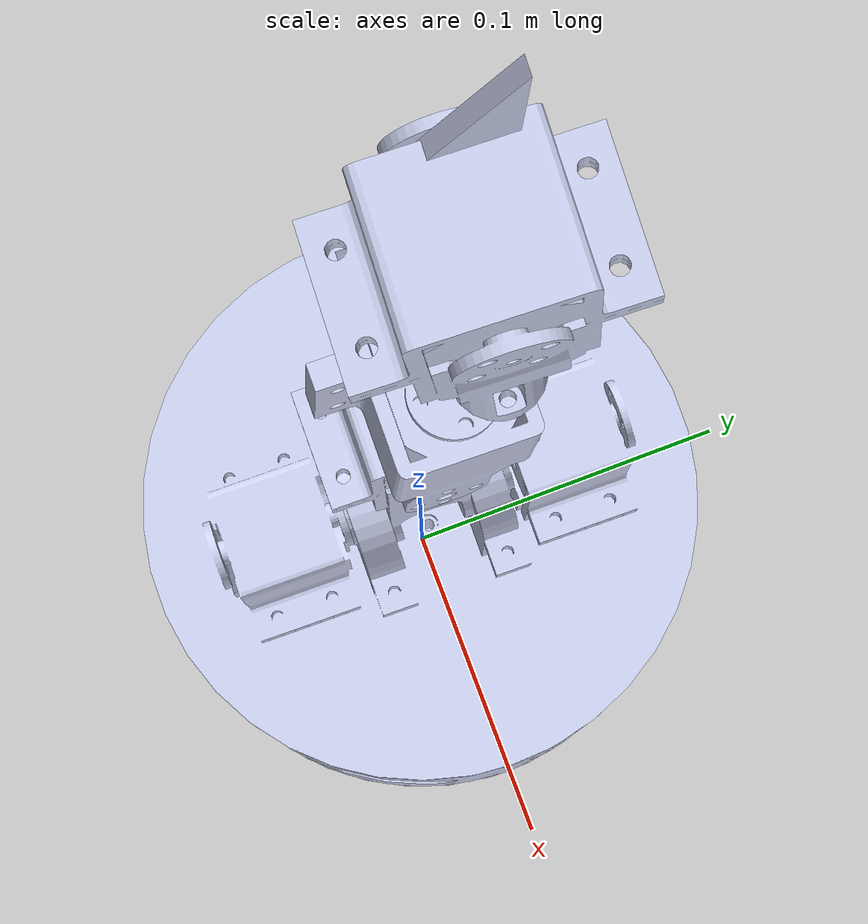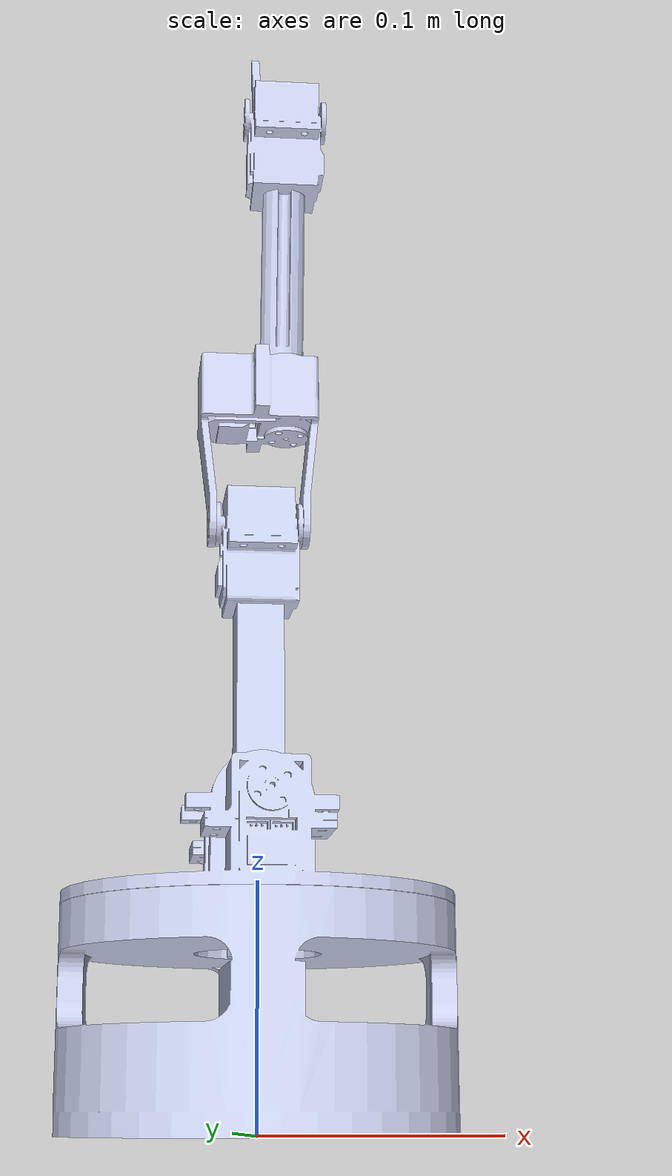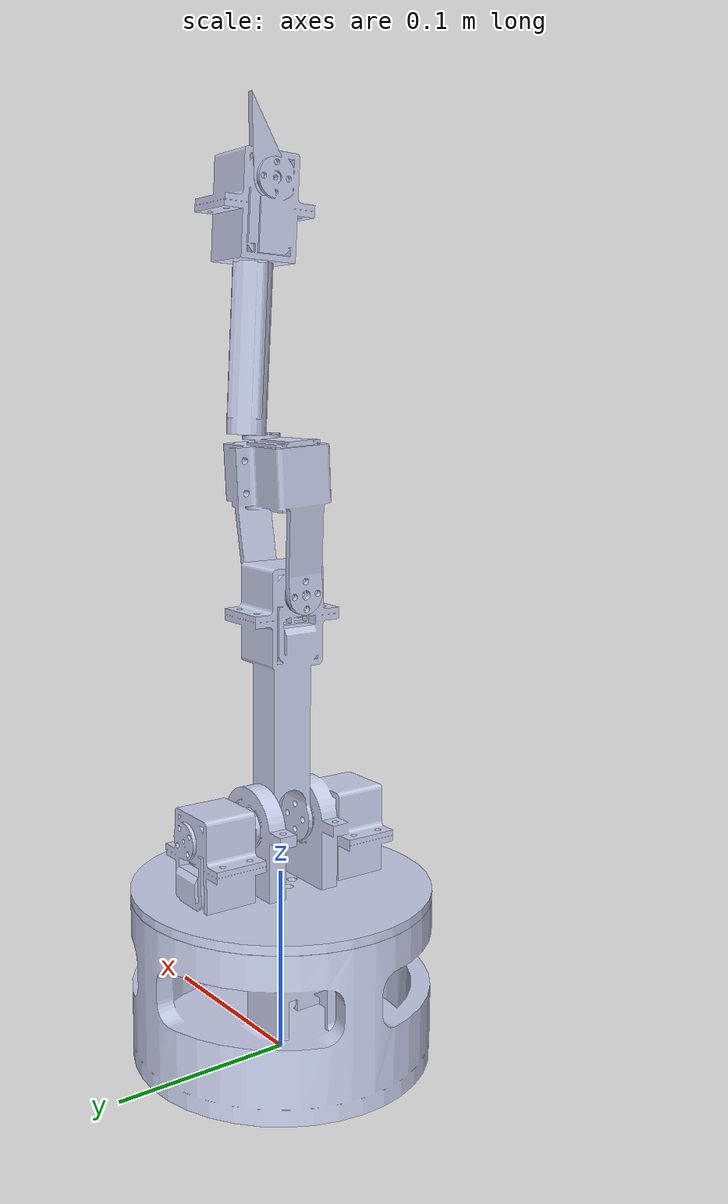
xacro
<?xml version="1.0"?>
<robot xmlns:xacro="http://www.ros.org/wiki/xacro" name="robot_arm">
    <xacro:arg name="initial_positions_file" default="initial_positions.yaml" />

    <!-- Import robot_arm urdf file -->
    <xacro:include filename="$(find robot_arm)/urdf/robot_arm.urdf" />

    <!-- Import control_xacro -->
    <xacro:include filename="robot_arm.ros2_control.xacro" />

    <xacro:robot_arm_ros2_control name="FakeSystem" initial_positions_file="$(arg initial_positions_file)"/>

</robot>

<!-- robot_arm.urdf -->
<robot
  name="robot_arm">
  <link
    name="base_link">
    <inertial>
      <origin
        xyz="-3.4691E-09 -0.0013733 0.007543"
        rpy="0 0 0" />
      <mass
        value="0.19807" />
      <inertia
        ixx="0.00032121"
        ixy="-2.33E-11"
        ixz="3.277E-12"
        iyy="0.00031349"
        iyz="7.6169E-06"
        izz="0.0005892" />
    </inertial>
    <visual>
      <origin
        xyz="0 0 0"
        rpy="0 0 0" />
      <geometry>
        <mesh
          filename="package://robot_arm/meshes/base_link.STL" />
      </geometry>
      <material
        name="">
        <color
          rgba="0.79216 0.81961 0.93333 1" />
      </material>
    </visual>
    <collision>
      <origin
        xyz="0 0 0"
        rpy="0 0 0" />
      <geometry>
        <mesh
          filename="package://robot_arm/meshes/base_link.STL" />
      </geometry>
    </collision>
  </link>
  <link
    name="Link_1">
    <inertial>
      <origin
        xyz="-1.5478E-17 -4.4748E-17 0.011342"
        rpy="0 0 0" />
      <mass
        value="0.24066" />
      <inertia
        ixx="0.00021961"
        ixy="-3.0281E-07"
        ixz="-7.6215E-20"
        iyy="0.0002036"
        iyz="-7.857E-19"
        izz="0.00037108" />
    </inertial>
    <visual>
      <origin
        xyz="0 0 0"
        rpy="0 0 0" />
      <geometry>
        <mesh
          filename="package://robot_arm/meshes/Link_1.STL" />
      </geometry>
      <material
        name="">
        <color
          rgba="0.79216 0.81961 0.93333 1" />
      </material>
    </visual>
    <collision>
      <origin
        xyz="0 0 0"
        rpy="0 0 0" />
      <geometry>
        <mesh
          filename="package://robot_arm/meshes/Link_1.STL" />
      </geometry>
    </collision>
  </link>
  <joint
    name="Joint_1"
    type="revolute">
    <origin
      xyz="0 0 0.0941"
      rpy="0 0 0" />
    <parent
      link="base_link" />
    <child
      link="Link_1" />
    <axis
      xyz="0 0 1" />
    <limit
      lower="-3.14"
      upper="3.14"
      effort="0"
      velocity="0" />
  </joint>
  <link
    name="Link_2">
    <inertial>
      <origin
        xyz="0.080358 0.0005424 0.0088242"
        rpy="0 0 0" />
      <mass
        value="0.090401" />
      <inertia
        ixx="1.3539E-05"
        ixy="-3.1808E-07"
        ixz="6.0163E-09"
        iyy="6.7249E-05"
        iyz="-5.9616E-08"
        izz="6.4097E-05" />
    </inertial>
    <visual>
      <origin
        xyz="0 0 0"
        rpy="0 0 0" />
      <geometry>
        <mesh
          filename="package://robot_arm/meshes/Link_2.STL" />
      </geometry>
      <material
        name="">
        <color
          rgba="0.79216 0.81961 0.93333 1" />
      </material>
    </visual>
    <collision>
      <origin
        xyz="0 0 0"
        rpy="0 0 0" />
      <geometry>
        <mesh
          filename="package://robot_arm/meshes/Link_2.STL" />
      </geometry>
    </collision>
  </link>
  <joint
    name="Joint_2"
    type="revolute">
    <origin
      xyz="0.00017175 0.0088483 0.034334"
      rpy="1.5708 -1.5708 0" />
    <parent
      link="Link_1" />
    <child
      link="Link_2" />
    <axis
      xyz="0 0 1" />
    <limit
      lower="-1.57"
      upper="1.57"
      effort="0"
      velocity="0" />
  </joint>
  <link
    name="Link_3">
    <inertial>
      <origin
        xyz="0.0541062471270772 -0.00354604381686915 -0.0220064974845355"
        rpy="0 0 0" />
      <mass
        value="0.05696273993258" />
      <inertia
        ixx="1.25532493264705E-05"
        ixy="4.038810934172E-07"
        ixz="2.95850913058183E-08"
        iyy="1.95793004928046E-05"
        iyz="-4.25743374682629E-08"
        izz="1.74776992259823E-05" />
    </inertial>
    <visual>
      <origin
        xyz="0 0 0"
        rpy="0 0 0" />
      <geometry>
        <mesh
          filename="package://robot_arm/meshes/Link_3.STL" />
      </geometry>
      <material
        name="">
        <color
          rgba="0.792156862745098 0.819607843137255 0.933333333333333 1" />
      </material>
    </visual>
    <collision>
      <origin
        xyz="0 0 0"
        rpy="0 0 0" />
      <geometry>
        <mesh
          filename="package://robot_arm/meshes/Link_3.STL" />
      </geometry>
    </collision>
  </link>
  <joint
    name="Joint_3"
    type="revolute">
    <origin
      xyz="0.12513 -0.020736 0.0091349"
      rpy="1.5708 0 0" />
    <parent
      link="Link_2" />
    <child
      link="Link_3" />
    <axis
      xyz="0 0 1" />
    <limit
      lower="-1.57"
      upper="1.57"
      effort="0"
      velocity="0" />
  </joint>
  <link
    name="Link_4">
    <inertial>
      <origin
        xyz="7.52705426133402E-05 0.000462811756834552 0.00858695671693732"
        rpy="0 0 0" />
      <mass
        value="0.0674532689964479" />
      <inertia
        ixx="3.93720710688711E-05"
        ixy="-4.83208580470525E-08"
        ixz="1.50463738848548E-07"
        iyy="3.82051496112177E-05"
        iyz="-1.63505049750872E-06"
        izz="9.77717247497827E-06" />
    </inertial>
    <visual>
      <origin
        xyz="0 0 0"
        rpy="0 0 0" />
      <geometry>
        <mesh
          filename="package://robot_arm/meshes/Link_4.STL" />
      </geometry>
      <material
        name="">
        <color
          rgba="0.792156862745098 0.819607843137255 0.933333333333333 1" />
      </material>
    </visual>
    <collision>
      <origin
        xyz="0 0 0"
        rpy="0 0 0" />
      <geometry>
        <mesh
          filename="package://robot_arm/meshes/Link_4.STL" />
      </geometry>
    </collision>
  </link>
  <joint
    name="Joint_4"
    type="revolute">
    <origin
      xyz="0.16019 -0.0093985 -0.0098166"
      rpy="0 1.5708 0" />
    <parent
      link="Link_3" />
    <child
      link="Link_4" />
    <axis
      xyz="0 0 1" />
    <limit
      lower="-3.14"
      upper="3.14"
      effort="0"
      velocity="0" />
  </joint>
  <link
    name="End_Effector">
    <inertial>
      <origin
        xyz="0.00878258139730009 -0.00234120487883826 0.00381053635874969"
        rpy="0 0 0" />
      <mass
        value="0.00185906518982787" />
      <inertia
        ixx="5.36992775192672E-08"
        ixy="5.49967375111194E-08"
        ixz="-1.1655036355356E-09"
        iyy="2.27532299935667E-07"
        iyz="2.18796546028271E-09"
        izz="2.77224509924143E-07" />
    </inertial>
    <visual>
      <origin
        xyz="0 0 0"
        rpy="0 0 0" />
      <geometry>
        <mesh
          filename="package://robot_arm/meshes/End_Effector.STL" />
      </geometry>
      <material
        name="">
        <color
          rgba="0.792156862745098 0.819607843137255 0.933333333333333 1" />
      </material>
    </visual>
    <collision>
      <origin
        xyz="0 0 0"
        rpy="0 0 0" />
      <geometry>
        <mesh
          filename="package://robot_arm/meshes/End_Effector.STL" />
      </geometry>
    </collision>
  </link>
  <joint
    name="Joint_5"
    type="revolute">
    <origin
      xyz="0.016421 0.0012653 0.038182"
      rpy="0 -1.5708 0" />
    <parent
      link="Link_4" />
    <child
      link="End_Effector" />
    <axis
      xyz="0 0 1" />
    <limit
      lower="-1.57"
      upper="1.57"
      effort="0"
      velocity="0" />
  </joint>
</robot>
